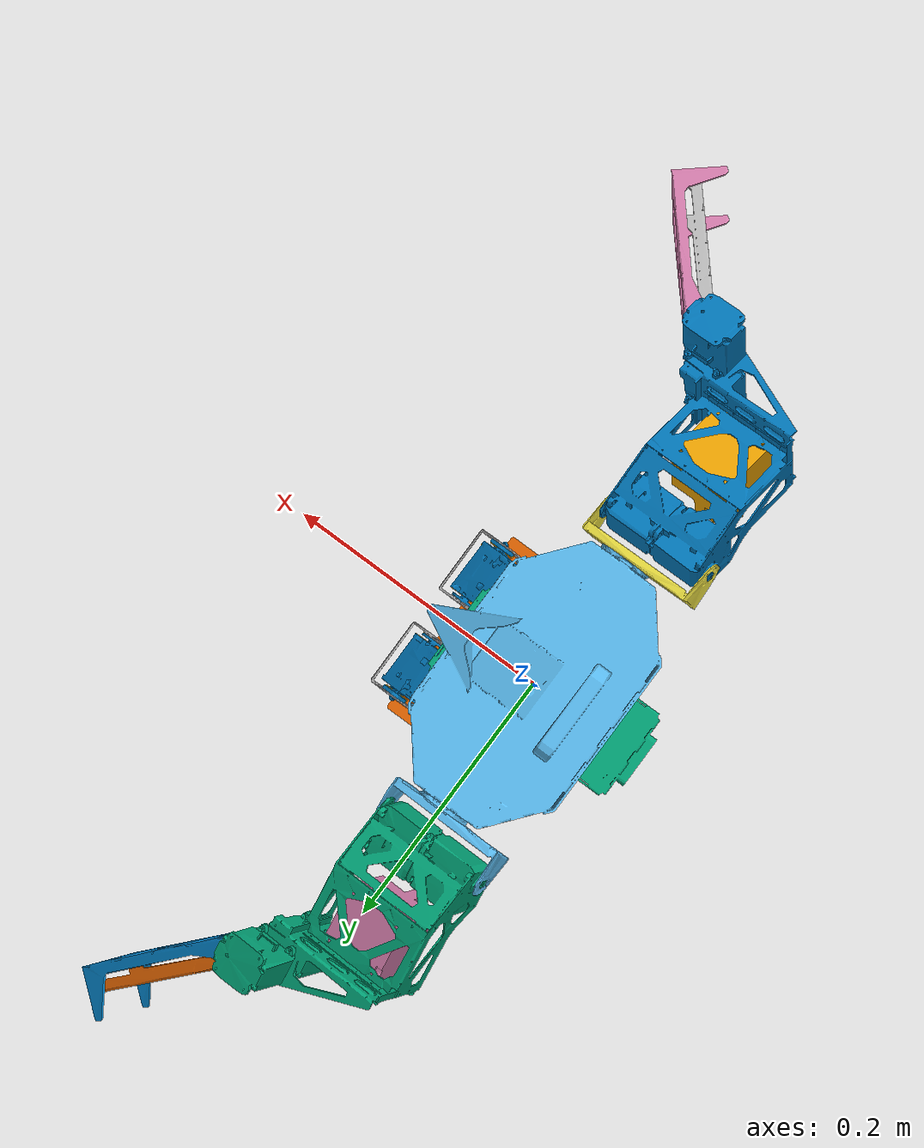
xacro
<?xml version="1.0"?>
<robot name="ginko" xmlns:xacro="http://www.ros.org/wiki/xacro">
  <xacro:arg name="model_mode" default="rviz"/>
  <xacro:arg name="gazebo_motor_model" default="dc"/>
  <xacro:arg name="gazebo_hw_interface" default="position"/>

  <xacro:include filename="$(find ginko_description)/gazebo/xacro/sensors/imu.xacro"/>
  <xacro:include filename="$(find ginko_description)/gazebo/xacro/sensors/urg.xacro"/>
  <xacro:include filename="$(find ginko_description)/gazebo/xacro/modules/body.xacro"/>
  <xacro:include filename="$(find ginko_description)/gazebo/transmission/body.gazebo"/>
  <xacro:include filename="$(find ginko_description)/gazebo/xacro/modules/arm_l.xacro"/>
  <xacro:include filename="$(find ginko_description)/gazebo/transmission/arm_l.gazebo"/>
  <xacro:include filename="$(find ginko_description)/gazebo/xacro/modules/arm_r.xacro"/>
  <xacro:include filename="$(find ginko_description)/gazebo/transmission/arm_r.gazebo"/>
  <xacro:include filename="$(find ginko_description)/gazebo/xacro/modules/leg_l.xacro"/>
  <xacro:include filename="$(find ginko_description)/gazebo/transmission/leg_l.gazebo"/>
  <xacro:include filename="$(find ginko_description)/gazebo/xacro/modules/leg_r.xacro"/>
  <xacro:include filename="$(find ginko_description)/gazebo/transmission/leg_r.gazebo"/>

  <!-- MACRO:Loading Gazebo Controllers for joints -->
  <xacro:macro name="gazebo_plugin_xacro" params="gazebo_motor_model">
    <xacro:if value="${gazebo_motor_model=='ginko'}">
      <gazebo>
        <plugin name="gazebo_ros_control" filename="libgazebo_ros_control.so">
          <robotNamespace>/ginko</robotNamespace>
          <robotSimType>gazebo_ros_control/GinkoRobotHWSim</robotSimType>
          <legacyModeNS>true</legacyModeNS>
        </plugin>
      </gazebo>
    </xacro:if>
    <xacro:if value="${gazebo_motor_model=='default'}">
      <gazebo>
        <plugin name="gazebo_ros_control" filename="libgazebo_ros_control.so">
          <robotNamespace>/ginko</robotNamespace>
          <robotSimType>gazebo_ros_control/DefaultRobotHWSim</robotSimType>
          <legacyModeNS>true</legacyModeNS>
        </plugin>
      </gazebo>
    </xacro:if>
    <xacro:if value="${gazebo_motor_model=='dc'}">
      <gazebo>
        <plugin name="gazebo_ros_control" filename="libgazebo_dc_motor.so">
          <robotNamespace>ginko</robotNamespace>
          <robotSimType>gazebo_dc_motor/DefaultRobotHWSim</robotSimType>
          <legacyModeNS>false</legacyModeNS>
        </plugin>
      </gazebo>
    </xacro:if>
  </xacro:macro>

  <!-- MACRO:Setting up a Robot Model -->
  <xacro:macro name="ginko_xacro" params="model_mode gazebo_hw_interface">
    <link name="root_link"/>
    <joint name="root_joint" type="fixed">
        <parent link="root_link"/>
        <child  link="body_link0"/>
        <origin xyz="0 0 0" rpy="0 0 0"/>
    </joint>
    <xacro:body_xacro model_mode="${model_mode}"/>
    <xacro:body_gazebo gazebo_hw_interface="${gazebo_hw_interface}"/>
    <xacro:leg_r model_mode="${model_mode}"/>
    <xacro:leg_r_gazebo gazebo_hw_interface="${gazebo_hw_interface}"/>
    <xacro:leg_l model_mode="${model_mode}"/>
    <xacro:leg_l_gazebo gazebo_hw_interface="${gazebo_hw_interface}"/>
    <xacro:arm_r model_mode="${model_mode}"/>
    <xacro:arm_r_gazebo gazebo_hw_interface="${gazebo_hw_interface}"/>
    <xacro:arm_l model_mode="${model_mode}"/>
    <xacro:arm_l_gazebo gazebo_hw_interface="${gazebo_hw_interface}"/>
  </xacro:macro>

  <!-- Load Macros -->
  <xacro:ginko_xacro model_mode="$(arg model_mode)" gazebo_hw_interface="$(arg gazebo_hw_interface)"/>
  <xacro:gazebo_plugin_xacro gazebo_motor_model="$(arg gazebo_motor_model)"/>
  <xacro:imu_xacro model_mode="$(arg model_mode)"/>
  <xacro:urg_xacro firame_id="arm_r_urg_link" topic_name="/sensor/urg/right/scan_raw" sensor_name="urg_right"/>
  <xacro:urg_xacro firame_id="arm_l_urg_link" topic_name="/sensor/urg/left/scan_raw" sensor_name="urg_left"/>

</robot>

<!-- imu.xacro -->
<robot xmlns:xacro="http://www.ros.org/wiki/xacro">
	<xacro:macro name="imu_xacro" params="model_mode">
		<xacro:if value="${model_mode!='rviz'}">
			<link name="body_imu_attached_link">
				<inertial>
					<mass value="0.0005"/>
					<origin xyz="0 0 0" rpy="0 0 0"/>
					<inertia
						ixx="0.00000001"
						ixy="0.00000000" iyy="0.00000001"
						ixz="0.00000000" iyz="0.00000000" izz="0.00000001"/>
				</inertial>
			</link>
			<joint name="body_imu_attached_joint" type="revolute">
				<parent link="body_link1"/>
				<child  link="body_imu_attached_link"/>
				<origin xyz="-0.09 0 -0.0379" rpy="0 1.5708 0"/>
				<axis xyz="0 0 1"/>
				<limit effort="0.0" lower="0.0" upper="0.0" velocity="0.0"/>
				<dynamics damping="0.1" friction="0.1"/>
			</joint>

			<link name="body_imu_base_link">
				<inertial>
					<mass value="0.0005"/>
					<origin xyz="0 0 0" rpy="0 0 0"/>
					<inertia
						ixx="0.00000001"
						ixy="0.00000000" iyy="0.00000001"
						ixz="0.00000000" iyz="0.00000000" izz="0.00000001"/>
				</inertial>
			</link>
			<joint name="imu_joint" type="revolute">
				<parent link="body_link1"/>
				<child  link="body_imu_base_link"/>
			<origin xyz="-0.09 0 -0.0379" rpy="0 0 0"/>
				<axis xyz="0 0 1"/>
				<limit effort="0.0" lower="0.0" upper="0.0" velocity="0.0"/>
				<dynamics damping="0.1" friction="0.1"/>
			</joint>
		</xacro:if>

		<xacro:if value="${model_mode=='rviz'}">
			<link name="body_imu_attached_link"/>
			<joint name="body_imu_attached_joint" type="fixed">
				<parent link="body_link1"/>
				<child  link="body_imu_attached_link"/>
				<origin xyz="-0.09 0 -0.0379" rpy="0 1.5708 0"/>
			</joint>

			<link name="body_imu_base_link"/>
			<joint name="imu_joint" type="fixed">
				<parent link="body_link1"/>
				<child  link="body_imu_base_link"/>
				<origin xyz="-0.09 0 -0.0379" rpy="0 1.5708 0"/>
			</joint>
		</xacro:if>

		<gazebo>
			<plugin name="imu_plugin" filename="libgazebo_ros_imu.so">
				<alwaysOn>true</alwaysOn>
				<bodyName>body_imu_base_link</bodyName>
				<topicName>/sensor/imu/raw/data</topicName>
				<serviceName>gazebo_imu_service</serviceName>
				<gaussianNoise>0.0</gaussianNoise>
				<updateRate>400.0</updateRate>
			</plugin>
		</gazebo>
	</xacro:macro>
</robot>

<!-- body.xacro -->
<robot xmlns:xacro="http://www.ros.org/wiki/xacro">
	<xacro:macro name="body_xacro" params="model_mode">
		<!-- chest -->
		<link name="body_link0">
			<collision>
				<origin xyz="0 0 0" rpy="0 0 0"/>
				<geometry>
					<mesh filename="package://ginko_description/meshes/stl/link00_chest.stl"/>
				</geometry>
			</collision>
			<visual>
				<origin xyz="0 0 0" rpy="0 0 0"/>
				<geometry>
					<mesh filename="package://ginko_description/meshes/obj/link00_chest.obj"/>
				</geometry>
			</visual>
			<inertial>
				<mass value="1.41502697"/>
				<origin xyz="0.00008301 0.00000908 0.03819562" rpy="0 0 0"/>
				<inertia
					ixx="0.00248548"
					ixy="-0.00000074" iyy="0.00121388"
					ixz="0.000003761" iyz="-0.00000042" izz="0.00287756"/>
			</inertial>
		</link>
		<!-- Joint1 -->
		<joint name="body_joint1" type="revolute">
			<parent link="body_link0"/>
			<child  link="body_link1"/>
			<origin xyz="0.0 0 0" rpy="0 0 0"/>
			<axis xyz="0 0 1"/>
			<limit effort="1000.0" lower="-2.6" upper="2.6" velocity="10.0"/>
			<dynamics damping="0.1" friction="0.1"/>
		</joint>
		<!-- waist -->
		<link name="body_link1">
			<collision>
				<origin xyz="0 0 0" rpy="0 0 0"/>
	    		<geometry>
					<mesh filename="package://ginko_description/meshes/stl/link01_waist.stl"/>
	    		</geometry>
			</collision>
			<visual>
				<origin xyz="0 0 0" rpy="0 0 0"/>
				<geometry>
					<mesh filename="package://ginko_description/meshes/obj/link01_waist.obj"/>
				</geometry>
			</visual>
			<inertial>
				<mass value="0.33312665"/>
				<origin xyz="-0.01135452 -0.00000134 -0.02720222" rpy="0 0 0"/>
				<inertia
					ixx="0.00015328"
					ixy="0.00000003" iyy="0.00073745"
					ixz="0.00001078" iyz="0.00000000" izz="0.00073107"/>
			</inertial>
		</link>
	</xacro:macro>
</robot>

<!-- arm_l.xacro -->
<robot xmlns:xacro="http://www.ros.org/wiki/xacro">
	<xacro:macro name="arm_l" params="model_mode">
		<!-- shoulder pitch. -->
		<joint name="arm_l_joint0" type="revolute">
		    <parent link="body_link0"/>
			<child link="arm_l_link0"/>
		    <origin xyz="0 0.10683 0.05115" rpy="0 0.3927 0"/>
		    <axis xyz="0 -1 0"/>
			<limit effort="1000.0" lower="-2.6" upper="2.6" velocity="10.0"/>
			<dynamics damping="0.1" friction="0.1"/>
		</joint>
		<link name="arm_l_link0">
			<collision>
				<origin xyz="0 0 0" rpy="0 0 0"/>
				<geometry>
					<mesh filename="package://ginko_description/meshes/stl/link09_l_arm01.stl"/>
				</geometry>
			</collision>
			<visual>
				<origin xyz="0 0 0" rpy="0 0 0"/>
				<geometry>
					<mesh filename="package://ginko_description/meshes/obj/link09_l_arm01.obj"/>
				</geometry>
			</visual>
			<inertial>
				<mass value="0.01356014"/>
				<origin xyz="-0.01125790 0.00529265 0.00000000" rpy="0 0 0"/>
				<inertia
					ixx="0.00000235"
					ixy="0.00000004" iyy="0.00001670"
					ixz="0.00000000" iyz="0.00000000" izz="0.00001606"/>
			</inertial>
		</link>

		<!-- shoulder roll -->
		<joint name="arm_l_joint1" type="revolute">
			<parent link="arm_l_link0"/>
			<child  link="arm_l_link1"/>
			<origin xyz="0.035 0.0246 0" rpy="1.1781 0 0"/>
			<axis xyz="1 0 0"/>
			<limit effort="1000.0" lower="-1.18" upper="1.5" velocity="10.0"/>
			<dynamics damping="0.1" friction="0.1"/>
		</joint>
		<link name="arm_l_link1">
			<collision>
				<origin xyz="0 0 0" rpy="0 0 0"/>
	    		<geometry>
					<mesh filename="package://ginko_description/meshes/stl/link10_l_arm02.stl"/>
	    		</geometry>
			</collision>
			<visual>
				<origin xyz="0 0 0" rpy="0 0 0"/>
				<geometry>
					<mesh filename="package://ginko_description/meshes/obj/link10_l_arm02.obj"/>
				</geometry>
			</visual>
			<inertial>
				<mass value="0.33139947"/>
				<origin xyz="-0.02612786 0.02650564 -0.06333369" rpy="0 0 0"/>
				<inertia
					ixx="0.00115128"
					ixy="0.00015366" iyy="0.00113572"
					ixz="-0.00031848" iyz="-0.00037104" izz="0.00064743"/>
			</inertial>
		</link>
		<joint name="arm_l_joint1_rev" type="revolute">
			<parent link="arm_l_link0"/>
			<child  link="dummy0_arm_l_link1"/>
			<origin xyz="-0.0562 0.0246 0" rpy="1.1781 0 0"/>
			<axis xyz="-1 0 0"/>
			<limit effort="1000.0" lower="-1.5" upper="1.18" velocity="10.0"/>
			<dynamics damping="0.0" friction="0.0"/>
		</joint>
		<link name="dummy0_arm_l_link1">
			<inertial>
				<mass value="0.00001"/>
				<origin xyz="-0.0912 0 0" rpy="0 0 0"/>
				<inertia
					ixx="0.00000001"
					ixy="0.00000000" iyy="0.00000001"
					ixz="0.00000000" iyz="0.00000000" izz="0.00000001"/>
			</inertial>
		</link>

		<!-- scissors -->
		<joint name="arm_l_joint2" type="revolute">
	    	<parent link="arm_l_link1"/>
	    	<child  link="arm_l_link2"/>
	    	<origin xyz="0.0092 0.0547 -0.11295" rpy="0 0.7854 0"/>
	    	<axis xyz="0 1 0"/>
	    	<limit effort="1000.0" lower="-2.36" upper="2.36" velocity="10.0"/>
			<dynamics damping="0.1" friction="0.1"/>
		</joint>
		<link name="arm_l_link2">
	    	<collision>
				<origin xyz="0 0 0" rpy="0 0 0"/>
	    		<geometry>
					<mesh filename="package://ginko_description/meshes/stl/link11_l_scissor01.stl"/>
	    		</geometry>
			</collision>
			<visual>
				<origin xyz="0 0 0" rpy="0 0 0"/>
				<geometry>
					<mesh filename="package://ginko_description/meshes/obj/link11_l_scissor01.obj"/>
				</geometry>
			</visual>
			<inertial>
				<mass value="0.03287850"/>
				<origin xyz="0.08234859 -0.030246866 0.00514112" rpy="0 0 0"/>
				<inertia
					ixx="0.00002277"
					ixy="-0.00000014" iyy="0.00008197"
					ixz="-0.00000058" iyz="-0.00000001" izz="0.00010105"/>
			</inertial>
		</link>
		<joint name="arm_l_joint3" type="revolute">
	    	<parent link="arm_l_link1"/>
	    	<child  link="arm_l_link3"/>
	    	<origin xyz="0.0092 -0.0018 -0.11295" rpy="0 0.7854 0"/>
	    	<axis xyz="0 1 0"/>
	    	<limit effort="1000.0" lower="-2.36" upper="2.36" velocity="10.0"/>
			<dynamics damping="0.1" friction="0.1"/>
		</joint>
		<link name="arm_l_link3">
	    	<collision>
				<origin xyz="0 0 0" rpy="0 0 0"/>
	    		<geometry>
					<mesh filename="package://ginko_description/meshes/stl/link12_l_scissor02.stl"/>
	    		</geometry>
			</collision>
			<visual>
				<origin xyz="0 0 0" rpy="0 0 0"/>
				<geometry>
					<mesh filename="package://ginko_description/meshes/obj/link12_l_scissor02.obj"/>
				</geometry>
			</visual>
			<inertial>
				<mass value="0.02936110"/>
				<origin xyz="0.07807033 0.02515230 -0.00665437" rpy="0 0 0"/>
				<inertia
					ixx="0.00001452"
					ixy="0.00000023" iyy="0.00006407"
					ixz="-0.00000245" iyz="-0.00000002" izz="0.00008024"/>
			</inertial>
		</link>

	  	<!-- LiDAR -->
		<!-- use zero-limited revolute joint for fixed joint (SDF) -->
		<xacro:if value="${model_mode!='rviz'}">
			<joint name="arm_l_urg_joint" type="revolute">
				<parent link="arm_l_link1"/>
				<child  link="arm_l_urg_link"/>
				<origin xyz="-0.0456 -0.01715 -0.06795" rpy="0 1.57 -1.57"/>
				<axis xyz="0 0 1"/>
				<limit effort="0.0" lower="0.0" upper="0.0" velocity="0.0"/>
				<dynamics damping="0.1" friction="0.1"/>
			</joint>
		</xacro:if>
		<xacro:if value="${model_mode=='rviz'}">
			<joint name="arm_l_urg_joint" type="fixed">
				<parent link="arm_l_link1"/>
				<child  link="arm_l_urg_link"/>
				<origin xyz="-0.0456 -0.01715 -0.06795" rpy="0 1.57 -1.57"/>
			</joint>
		</xacro:if>

		<link name="arm_l_urg_link">
	    	<collision>
				<origin xyz="0 0 0" rpy="0 0 0"/>
	    		<geometry>
					<mesh filename="package://ginko_description/meshes/stl/urg.stl"/>
	    		</geometry>
			</collision>
			<visual>
				<origin xyz="0 0 0" rpy="0 0 0"/>
				<geometry>
					<mesh filename="package://ginko_description/meshes/obj/urg.obj"/>
				</geometry>
			</visual>
			<inertial>
				<mass value="0.16705492"/>
				<origin xyz="-0.00014579 0.00000831 -0.02360505" rpy="0 0 0"/>
				<inertia
					ixx="0.00008801"
					ixy="0.00000000" iyy="0.00008854"
					ixz="-0.00000049" iyz="-0.00000004" izz="0.00006019"/>
			</inertial>
		</link>
	</xacro:macro>
</robot>

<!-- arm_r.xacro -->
<robot xmlns:xacro="http://www.ros.org/wiki/xacro">
	<xacro:macro name="arm_r" params="model_mode">
		<!-- shoulder pitch. -->
		<joint name="arm_r_joint0" type="revolute">
		    <parent link="body_link0"/>
			<child link="arm_r_link0"/>
		    <origin xyz="0 -0.10683 0.05115" rpy="0 0.3927 0"/>
		    <axis xyz="0 1 0"/>
			<limit effort="1000.0" lower="-2.6" upper="2.6" velocity="10.0"/>
			<dynamics damping="0.1" friction="0.1"/>
		</joint>
		<link name="arm_r_link0">
			<collision>
				<origin xyz="0 0 0" rpy="0 0 0"/>
				<geometry>
					<mesh filename="package://ginko_description/meshes/stl/link09_r_arm01.stl"/>
				</geometry>
			</collision>
			<visual>
				<origin xyz="0 0 0" rpy="0 0 0"/>
				<geometry>
					<mesh filename="package://ginko_description/meshes/obj/link09_r_arm01.obj"/>
				</geometry>
			</visual>
			<inertial>
				<mass value="0.01356014"/>
				<origin xyz="-0.01125790 -0.00529265 0.00000000" rpy="0 0 0"/>
				<inertia
					ixx="0.00000235"
					ixy="-0.00000004" iyy="0.00001670"
					ixz="0.00000000" iyz="0.00000000" izz="0.00001606"/>
			</inertial>
		</link>

		<!-- shoulder roll -->
		<joint name="arm_r_joint1" type="revolute">
			<parent link="arm_r_link0"/>
			<child  link="arm_r_link1"/>
			<origin xyz="0.035 -0.0246 0" rpy="-1.1781 0 0"/>
			<axis xyz="1 0 0"/>
			<limit effort="1000.0" lower="-1.6" upper="1.18" velocity="10.0"/>
			<dynamics damping="0.1" friction="0.1"/>
		</joint>
		<link name="arm_r_link1">
			<collision>
				<origin xyz="0 0 0" rpy="0 0 0"/>
	    		<geometry>
					<mesh filename="package://ginko_description/meshes/stl/link10_r_arm02.stl"/>
	    		</geometry>
			</collision>
			<visual>
				<origin xyz="0 0 0" rpy="0 0 0"/>
				<geometry>
					<mesh filename="package://ginko_description/meshes/obj/link10_r_arm02.obj"/>
				</geometry>
			</visual>
			<inertial>
				<mass value="0.33139947"/>
				<origin xyz="-0.02612786 -0.02650564 -0.06333369" rpy="0 0 0"/>
				<inertia
					ixx="0.00115128"
					ixy="-0.00015366" iyy="0.00113572"
					ixz="-0.00031848" iyz="0.00037104" izz="0.00064743"/>
			</inertial>
		</link>
		<joint name="arm_r_joint1_rev" type="revolute">
			<parent link="arm_r_link0"/>
			<child  link="dummy0_arm_r_link1"/>
			<origin xyz="-0.0562 -0.0246 0" rpy="-1.1781 0 0"/>
			<axis xyz="-1 0 0"/>
			<limit effort="1000.0" lower="-1.18" upper="1.6" velocity="10.0"/>
			<dynamics damping="0.0" friction="0.0"/>
		</joint>
		<link name="dummy0_arm_r_link1">
			<inertial>
				<mass value="0.00001"/>
				<origin xyz="-0.0912 0 0" rpy="0 0 0"/>
				<inertia
					ixx="0.00000001"
					ixy="0.00000000" iyy="0.00000001"
					ixz="0.00000000" iyz="0.00000000" izz="0.00000001"/>
			</inertial>
		</link>

		<!-- scissors -->
		<joint name="arm_r_joint2" type="revolute">
			<parent link="arm_r_link1"/>
			<child  link="arm_r_link2"/>
			<origin xyz="0.0092 -0.0547 -0.11295" rpy="0 0.7854 0"/>
			<axis xyz="0 -1 0"/>
			<limit effort="1000.0" lower="-2.36" upper="2.36" velocity="10.0"/>
			<dynamics damping="0.1" friction="0.1"/>
		</joint>
		<link name="arm_r_link2">
	    	<collision>
				<origin xyz="0 0 0" rpy="0 0 0"/>
	    		<geometry>
					<mesh filename="package://ginko_description/meshes/stl/link11_r_scissor01.stl"/>
	    		</geometry>
			</collision>
			<visual>
				<origin xyz="0 0 0" rpy="0 0 0"/>
				<geometry>
					<mesh filename="package://ginko_description/meshes/obj/link11_r_scissor01.obj"/>
				</geometry>
			</visual>
			<inertial>
				<mass value="0.03287850"/>
				<origin xyz="0.08234859 0.030246866 0.00514112" rpy="0 0 0"/>
				<inertia
					ixx="0.00002277"
					ixy="0.00000014" iyy="0.00008197"
					ixz="-0.00000058" iyz="0.00000001" izz="0.00010105"/>
			</inertial>
		</link>
		<joint name="arm_r_joint3" type="revolute">
			<parent link="arm_r_link1"/>
			<child  link="arm_r_link3"/>
			<origin xyz="0.0092 0.0018 -0.11295" rpy="0 0.7854 0"/>
			<axis xyz="0 -1 0"/>
			<limit effort="1000.0" lower="-2.36" upper="2.36" velocity="10.0"/>
			<dynamics damping="0.1" friction="0.1"/>
		</joint>
		<link name="arm_r_link3">
	    	<collision>
				<origin xyz="0 0 0" rpy="0 0 0"/>
	    		<geometry>
					<mesh filename="package://ginko_description/meshes/stl/link12_r_scissor02.stl"/>
	    		</geometry>
			</collision>
			<visual>
				<origin xyz="0 0 0" rpy="0 0 0"/>
				<geometry>
					<mesh filename="package://ginko_description/meshes/obj/link12_r_scissor02.obj"/>
				</geometry>
			</visual>
			<inertial>
				<mass value="0.02936110"/>
				<origin xyz="0.07807033 -0.02515230 -0.00665437" rpy="0 0 0"/>
				<inertia
					ixx="0.00001452"
					ixy="-0.00000023" iyy="0.00006407"
					ixz="-0.00000245" iyz="0.00000002" izz="0.00008024"/>
			</inertial>
		</link>

	  	<!-- LiDAR -->
		<!-- use zero-limited revolute joint for fixed joint (SDF) -->
		<xacro:if value="${model_mode!='rviz'}">
			<joint name="arm_r_urg_joint"  type="revolute">
				<parent link="arm_r_link1"/>
				<child  link="arm_r_urg_link"/>
				<origin xyz="-0.0456 0.01715 -0.06795" rpy="0 1.57 1.57"/>
				<axis xyz="0 0 1"/>
				<limit effort="0.0" lower="0.0" upper="0.0" velocity="0.0"/>
				<dynamics damping="0.1" friction="0.1"/>
			</joint>
		</xacro:if>
		<xacro:if value="${model_mode=='rviz'}">
			<joint name="arm_r_urg_joint" type="fixed">
				<parent link="arm_r_link1"/>
				<child  link="arm_r_urg_link"/>
				<origin xyz="-0.0456 0.01715 -0.06795" rpy="0 1.57 1.57"/>
			</joint>
		</xacro:if>

		<link name="arm_r_urg_link">
	    	<collision>
				<origin xyz="0 0 0" rpy="0 0 0"/>
	    		<geometry>
					<mesh filename="package://ginko_description/meshes/stl/urg.stl"/>
	    		</geometry>
			</collision>
			<visual>
				<origin xyz="0 0 0" rpy="0 0 0"/>
				<geometry>
					<mesh filename="package://ginko_description/meshes/obj/urg.obj"/>
				</geometry>
			</visual>
			<inertial>
				<mass value="0.16705492"/>
				<origin xyz="-0.00014579 0.00000831 -0.02360505" rpy="0 0 0"/>
				<inertia
					ixx="0.00008801"
					ixy="0.00000000" iyy="0.00008854"
					ixz="-0.00000049" iyz="-0.00000004" izz="0.00006019"/>
			</inertial>
		</link>
	</xacro:macro>
</robot>

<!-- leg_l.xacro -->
<robot xmlns:xacro="http://www.ros.org/wiki/xacro">
	<xacro:macro name="leg_l" params="model_mode">
		<!-- Link conencts from body. Femoral first. -->
		<joint name="leg_l_joint0" type="revolute">
		    <parent link="body_link1"/>
			<child link="leg_l_link0"/>
			<origin xyz="-0.0404 0.0 -0.0409" rpy="0 0 0"/>
		    <axis xyz="-1 0 0"/>
			<limit effort="1000.0" lower="-0.8" upper="1.0" velocity="10.0"/>
			<dynamics damping="0.0" friction="0.3"/>
		</joint>
		<link name="leg_l_link0">
			<collision>
				<origin xyz="0 0 0" rpy="0 0 0"/>
				<geometry>
					<mesh filename="package://ginko_description/meshes/stl/link02_l_femoral.stl"/>
				</geometry>
			</collision>
			<visual>
				<origin xyz="0 0 0" rpy="0 0 0"/>
				<geometry>
					<mesh filename="package://ginko_description/meshes/obj/link02_l_femoral.obj"/>
				</geometry>
			</visual>
			<inertial>
				<mass value="0.03433352"/>
				<origin xyz="0.02930795 0.03723759 -0.02605386" rpy="0 0 0"/>
				<inertia
					ixx="0.00002443"
					ixy="-0.00000021" iyy="0.00002287"
					ixz="-0.00000021" iyz="-0.00000391" izz="0.00002983"/>
			</inertial>
		</link>

		<!-- parallel link (upper-1st) -->
		<joint name="leg_l_joint1" type="revolute">
			<parent link="leg_l_link0"/>
			<child  link="leg_l_link1"/>
			<origin xyz="0.0433 0.0175 -0.0481" rpy="0 0.7854 0"/>
			<axis xyz="0 -1 0"/>
			<limit effort="1000.0" lower="-1.3" upper="0.7854" velocity="10.0"/>
			<dynamics damping="0.0" friction="0.3"/>
		</joint>
		<link name="leg_l_link1">
			<collision>
				<origin xyz="0 0 0" rpy="0 0 0"/>
	    		<geometry>
					<mesh filename="package://ginko_description/meshes/stl/link03_l_leg01.stl"/>
	    		</geometry>
			</collision>
			<visual>
				<origin xyz="0 0 0" rpy="0 0 0"/>
				<geometry>
					<mesh filename="package://ginko_description/meshes/obj/link03_l_leg01.obj"/>
				</geometry>
			</visual>
			<inertial>
				<mass value="0.15115113"/>
				<origin xyz="0.05000000 0.02587267 0.00000000" rpy="0 0 0"/>
				<inertia
					ixx="0.00003721"
					ixy="0.00000000" iyy="0.00026035"
					ixz="0.00000000" iyz="0.00000000" izz="0.00028077"/>
			</inertial>
		</link>
		<joint name="leg_l_joint3" type="revolute">
	    	<parent link="leg_l_link1"/>
	    	<child  link="leg_l_link3"/>
	    	<origin xyz="0.1 0.0 0.0" rpy="0 -0.7854 0"/>
	    	<axis xyz="0 1 0"/>
			<limit effort="1000.0" lower="-1.3" upper="0.7854" velocity="10.0"/>
			<dynamics damping="0.0" friction="0.3"/>
			<xacro:if value="${model_mode=='rviz'}">
				<mimic joint="leg_l_joint1" multiplier="1" offset="0"/>
			</xacro:if>
	  	</joint>

		<!-- parallel link (upper-2nd) -->
		<joint name="leg_l_joint2" type="revolute">
			<parent link="leg_l_link0"/>
			<child  link="leg_l_link2"/>
			<origin xyz="0.022 0.0175 -0.06015" rpy="0 0.7854 0"/>
			<axis xyz="0 -1 0"/>
			<limit effort="1000.0" lower="-1.3" upper="0.7854" velocity="10.0"/>
			<dynamics damping="0.0" friction="0.3"/>
			<xacro:if value="${model_mode=='rviz'}">
				<mimic joint="leg_l_joint1" multiplier="1" offset="0"/>
    		</xacro:if>
		</joint>
		<link name="leg_l_link2">
	    	<collision>
				<origin xyz="0 0 0" rpy="0 0 0"/>
	    		<geometry>
					<mesh filename="package://ginko_description/meshes/stl/link04_l_leg02.stl"/>
	    		</geometry>
			</collision>
			<visual>
				<origin xyz="0 0 0" rpy="0 0 0"/>
				<geometry>
					<mesh filename="package://ginko_description/meshes/obj/link04_l_leg02.obj"/>
				</geometry>
			</visual>
			<inertial>
				<mass value="0.01646643"/>
				<origin xyz="0.05000000 0.02495100 -0.00491150" rpy="0 0 0"/>
				<inertia
					ixx="0.00000640"
					ixy="0.00000000" iyy="0.00001642"
					ixz="0.00000000" iyz="0.00000000" izz="0.00002264"/>
			</inertial>
		</link>
		<joint name="close_leg_l_joint0" type="revolute">
			<parent link="leg_l_link2"/>
			<child  link="dummy0_leg_l_link3"/>
			<origin xyz="0.1 0.0 0.0" rpy="0 -0.7854 0"/>
			<axis xyz="0 1 0"/>
			<limit effort="1000.0" lower="-1.3" upper="0.7854" velocity="10.0"/>
			<dynamics damping="0.0" friction="0.0"/>
			<xacro:if value="${model_mode=='rviz'}">
				<mimic joint="leg_l_joint1" multiplier="1" offset="0"/>
			</xacro:if>
		</joint>
		<link name="dummy0_leg_l_link3">
			<inertial>
				<mass value="0.00001"/>
				<origin xyz="-0.021 0 -0.012" rpy="0 0 0"/>
				<inertia
					ixx="0.00000001"
					ixy="0.00000000" iyy="0.00000001"
					ixz="0.00000000" iyz="0.00000000" izz="0.00000001"/>
			</inertial>
		</link>

		<!-- knee -->
		<link name="leg_l_link3">
	    	<collision>
				<origin xyz="0 0 0" rpy="0 0 0"/>
	    		<geometry>
					<mesh filename="package://ginko_description/meshes/stl/link05_l_knee.stl"/>
	    		</geometry>
			</collision>
			<visual>
				<origin xyz="0 0 0" rpy="0 0 0"/>
				<geometry>
					<mesh filename="package://ginko_description/meshes/obj/link05_l_knee.obj"/>
				</geometry>
			</visual>
			<inertial>
				<mass value="0.01781176"/>
				<origin xyz="0.00393357 0.02364163 -0.01930000" rpy="0 0 0"/>
				<inertia
					ixx="0.00001301"
					ixy="0.00000008" iyy="0.00000700"
					ixz="0.00000000" iyz="0.00000000" izz="0.00001388"/>
			</inertial>
		</link>

	  	<!-- spring -->
		<xacro:if value="${model_mode!='rviz'}">
			<joint name="leg_l_spring0_joint0" type="revolute">
		    	<parent link="leg_l_link0"/>
		    	<child  link="leg_l_spring0_link0"/>
		    	<origin xyz="0.022 0.0755 -0.06015" rpy="0 0.56756754 0"/>
		    	<axis xyz="0 -1 0"/>
				<dynamics damping="0.0" friction="0.0"/>
		    	<limit effort="0.0" lower="-3.141593" upper="3.141593" velocity="10.0"/>
		  	</joint>
		  	<link name="leg_l_spring0_link0">
		    	<collision>
					<origin xyz="0 0 0" rpy="0 0 0"/>
		    		<geometry>
						<mesh filename="package://ginko_description/meshes/stl/spring1.stl"/>
		    		</geometry>
				</collision>
		    	<visual>
					<origin xyz="0 0 0" rpy="0 0 0"/>
		    		<geometry>
						<mesh filename="package://ginko_description/meshes/stl/spring1.stl"/>
		    		</geometry>
					<material name="spring">
						<color rgba="0.5 0.5 0.5 1.0"/>
					</material>
				</visual>
				<inertial>
					<mass value="0.0143865"/>
					<origin xyz="0.03091683 0.0 0.0" rpy="0 0 0"/>
					<inertia
						ixx="0.0000001"
						ixy="0.00000000" iyy="0.0000060"
						ixz="0.00000000" iyz="0.00000000" izz="0.0000060"/>
				</inertial>
			</link>
			<joint name="spring0_leg_l_joint" type="prismatic">
				<parent link="leg_l_spring0_link0"/>
				<child  link="leg_l_spring0_link1"/>
				<origin xyz="0.10911938 0.0 0.0" rpy="0 3.141593 0"/>
				<axis xyz="1 0 0"/>
				<limit effort="1000.0" lower="-0.03" upper="0.06" velocity="10.0"/>
				<dynamics damping="0.0" friction="0.0"/>
			</joint>
		  	<link name="leg_l_spring0_link1">
		    	<collision>
					<origin xyz="0 0 0" rpy="0 0 0"/>
		    		<geometry>
						<mesh filename="package://ginko_description/meshes/stl/spring2.stl"/>
		    		</geometry>
				</collision>
		    	<visual>
					<origin xyz="0 0 0" rpy="0 0 0"/>
		    		<geometry>
						<mesh filename="package://ginko_description/meshes/stl/spring2.stl"/>
		    		</geometry>
					<material name="spring">
						<color rgba="0.5 0.5 0.5 1.0"/>
					</material>
				</visual>
				<inertial>
					<mass value="0.0143865"/>
					<origin xyz="0.03091683 0.0 0.0" rpy="0 0 0"/>
					<inertia
						ixx="0.0000001"
						ixy="0.00000000" iyy="0.0000060"
						ixz="0.00000000" iyz="0.00000000" izz="0.0000060"/>
				</inertial>
			</link>
			<joint name="close_leg_l_spring0_joint1" type="revolute">
				<parent link="leg_l_spring0_link1"/>
				<child  link="dummy1_leg_l_link3"/>
				<origin xyz="0 0 0" rpy="0 0 0"/>
				<axis xyz="0 -1 0"/>
				<limit effort="0.0" lower="-3.141593" upper="3.141593" velocity="10.0"/>
				<dynamics damping="0.0" friction="0.0"/>
			</joint>
			<link name="dummy1_leg_l_link3">
				<inertial>
					<mass value="0.00001"/>
					<origin xyz="0 0.058 0" rpy="0 0 0"/>
					<inertia
						ixx="0.00000001"
						ixy="0.00000000" iyy="0.00000001"
						ixz="0.00000000" iyz="0.00000000" izz="0.00000001"/>
				</inertial>
			</link>
		</xacro:if>

		<!-- parallel link (lower-1st) -->
		<joint name="leg_l_joint4" type="revolute">
			<parent link="leg_l_link3"/>
			<child  link="leg_l_link4"/>
			<origin xyz="0 0 -0.0386" rpy="0 2.3562 0"/>
			<axis xyz="0 -1 0"/>
			<limit effort="1000.0" lower="-0.7854" upper="1.3" velocity="10.0"/>
			<dynamics damping="0.0" friction="0.3"/>
		</joint>
		<link name="leg_l_link4">
			<collision>
				<origin xyz="0 0 0" rpy="0 0 0"/>
	    		<geometry>
					<mesh filename="package://ginko_description/meshes/stl/link03_l_leg01.stl"/>
	    		</geometry>
			</collision>
			<visual>
				<origin xyz="0 0 0" rpy="0 0 0"/>
				<geometry>
					<mesh filename="package://ginko_description/meshes/obj/link03_l_leg01.obj"/>
				</geometry>
			</visual>
			<inertial>
				<mass value="0.15115113"/>
				<origin xyz="0.05000000 0.02587267 0.00000000" rpy="0 0 0"/>
				<inertia
					ixx="0.00003721"
					ixy="0.00000000" iyy="0.00026035"
					ixz="0.00000000" iyz="0.00000000" izz="0.00028077"/>
			</inertial>
		</link>
		<joint name="leg_l_joint6" type="revolute">
	    	<parent link="leg_l_link4"/>
	    	<child  link="leg_l_link6"/>
	    	<origin xyz="0.1 0.0 0.0" rpy="0 -2.3562 0"/>
	    	<axis xyz="0 1 0"/>
			<limit effort="1000.0" lower="-0.7854" upper="1.3" velocity="10.0"/>
			<dynamics damping="0.0" friction="0.3"/>
			<xacro:if value="${model_mode=='rviz'}">
	    		<mimic joint="leg_l_joint4" multiplier="1" offset="0"/>
			</xacro:if>
		</joint>

		<!-- parallel link (lower-2nd) -->
		<joint name="leg_l_joint5" type="revolute">
			<parent link="leg_l_link3"/>
			<child  link="leg_l_link5"/>
			<origin xyz="-0.0213 0 -0.02655" rpy="0 2.3562 0"/>
			<axis xyz="0 -1 0"/>
			<limit effort="0.0" lower="-0.7854" upper="1.3" velocity="10.0"/>
			<dynamics damping="0.0" friction="0.0"/>
			<xacro:if value="${model_mode=='rviz'}">
				<mimic joint="leg_l_joint4" multiplier="1" offset="0"/>
			</xacro:if>
		</joint>
		<link name="leg_l_link5">
	    	<collision>
				<origin xyz="0 0 0" rpy="0 0 0"/>
	    		<geometry>
					<mesh filename="package://ginko_description/meshes/stl/link04_l_leg02.stl"/>
	    		</geometry>
			</collision>
			<visual>
				<origin xyz="0 0 0" rpy="0 0 0"/>
				<geometry>
					<mesh filename="package://ginko_description/meshes/obj/link04_l_leg02.obj"/>
				</geometry>
			</visual>
			<inertial>
				<mass value="0.01646643"/>
				<origin xyz="0.05000000 0.02495100 -0.00491150" rpy="0 0 0"/>
				<inertia
					ixx="0.00000640"
					ixy="0.00000000" iyy="0.00001642"
					ixz="0.00000000" iyz="0.00000000" izz="0.00002264"/>
			</inertial>
		</link>
		<joint name="close_leg_l_joint1" type="revolute">
			<parent link="leg_l_link5"/>
			<child  link="dummy2_leg_l_link6"/>
			<origin xyz="0.1 0.0 0.0" rpy="0 -2.3562 0"/>
			<axis xyz="0 1 0"/>
			<limit effort="0.0" lower="-1.3" upper="0.7854" velocity="10.0"/>
			<dynamics damping="0.0" friction="0.0"/>
			<xacro:if value="${model_mode=='rviz'}">
				<mimic joint="leg_l_joint4" multiplier="1" offset="0"/>
			</xacro:if>
		</joint>
		<link name="dummy2_leg_l_link6">
			<inertial>
				<mass value="0.00001"/>
				<origin xyz="-0.021 0 0.012" rpy="0 0 0"/>
				<inertia
					ixx="0.00000001"
					ixy="0.00000000" iyy="0.00000001"
					ixz="0.00000000" iyz="0.00000000" izz="0.00000001"/>
			</inertial>
		</link>

	  	<!-- spring -->
		<xacro:if value="${model_mode!='rviz'}">
			<joint name="leg_l_spring1_joint0" type="continuous">
				<parent link="leg_l_link4"/>
				<child  link="leg_l_spring1_link0"/>
				<origin xyz="0 0.058 0" rpy="0 0.217830624 0"/>
				<axis xyz="0 -1 0"/>
				<limit effort="0.0" lower="-3.141593" upper="3.141593" velocity="10.0"/>
				<dynamics damping="0.01" friction="0.0"/>
			</joint>
			<link name="leg_l_spring1_link0">
				<collision>
					<origin xyz="0 0 0" rpy="0 0 0"/>
					<geometry>
						<mesh filename="package://ginko_description/meshes/stl/spring1.stl"/>
					</geometry>
				</collision>
				<visual>
					<origin xyz="0 0 0" rpy="0 0 0"/>
					<geometry>
						<mesh filename="package://ginko_description/meshes/stl/spring1.stl"/>
					</geometry>
					<material name="spring">
						<color rgba="0.5 0.5 0.5 1.0"/>
					</material>
				</visual>
				<inertial>
					<mass value="0.0143865"/>
					<origin xyz="0.03091683 0.0 0.0" rpy="0 0 0"/>
					<inertia
						ixx="0.0000001"
						ixy="0.00000000" iyy="0.0000060"
						ixz="0.00000000" iyz="0.00000000" izz="0.0000060"/>
				</inertial>
			</link>
			<joint name="spring1_leg_l_joint" type="prismatic">
				<parent link="leg_l_spring1_link0"/>
				<child  link="leg_l_spring1_link1"/>
				<origin xyz="0.10911938 0.0 0.0" rpy="0 3.141593 0"/>
				<axis xyz="1 0 0"/>
				<limit effort="1000.0" lower="-0.03" upper="0.06" velocity="10.0"/>
				<dynamics damping="0.01" friction="0.0"/>
			</joint>
			<link name="leg_l_spring1_link1">
				<collision>
					<origin xyz="0 0 0" rpy="0 0 0"/>
					<geometry>
						<mesh filename="package://ginko_description/meshes/stl/spring2.stl"/>
					</geometry>
				</collision>
				<visual>
					<origin xyz="0 0 0" rpy="0 0 0"/>
					<geometry>
						<mesh filename="package://ginko_description/meshes/stl/spring2.stl"/>
					</geometry>
					<material name="spring">
						<color rgba="0.5 0.5 0.5 1.0"/>
					</material>
				</visual>
				<inertial>
					<mass value="0.0143865"/>
					<origin xyz="0.03091683 0.0 0.0" rpy="0 0 0"/>
					<inertia
						ixx="0.0000001"
						ixy="0.00000000" iyy="0.0000060"
						ixz="0.00000000" iyz="0.00000000" izz="0.0000060"/>
				</inertial>
			</link>
			<joint name="close_leg_l_spring1_joint1" type="continuous">
				<parent link="leg_l_spring1_link1"/>
				<child  link="dummy3_leg_l_link6"/>
				<origin xyz="0 0 0" rpy="0 -2.574025114 0"/>
				<axis xyz="0 -1 0"/>
				<limit effort="0.0" lower="-3.141593" upper="3.141593" velocity="10.0"/>
				<dynamics damping="0.01" friction="0.0"/>
			</joint>
			<link name="dummy3_leg_l_link6">
				<inertial>
					<mass value="0.00001"/>
					<origin xyz="-0.021 0.058 0.012" rpy="0 0 0"/>
					<inertia
						ixx="0.00000001"
						ixy="0.00000000" iyy="0.00000001"
						ixz="0.00000000" iyz="0.00000000" izz="0.00000001"/>
				</inertial>
			</link>
		</xacro:if>

		<!-- toe -->
		<link name="leg_l_link6">
			<collision>
				<origin xyz="0 0 0" rpy="0 0 0"/>
				<geometry>
					<mesh filename="package://ginko_description/meshes/stl/link06_l_toe01.stl"/>
				</geometry>
			</collision>
			<visual>
				<origin xyz="0 0 0" rpy="0 0 0"/>
				<geometry>
					<mesh filename="package://ginko_description/meshes/obj/link06_l_toe01.obj"/>
				</geometry>
			</visual>
			<inertial>
				<mass value="0.08799204"/>
				<origin xyz="-0.04166125 0.02463880 -0.02586249" rpy="0 0 0"/>
				<inertia
					ixx="0.00002815"
					ixy="-0.00000041" iyy="0.00006846"
					ixz="0.00000980" iyz="-0.00000026" izz="0.00006529"/>
			</inertial>
		</link>
		<joint name="leg_l_joint7" type="revolute">
	    	<parent link="leg_l_link6"/>
	    	<child  link="leg_l_link7"/>
	    	<origin xyz="-0.028 0.02475 -0.0391" rpy="0 0 0"/>
	    	<axis xyz="-1 0 0"/>
	    	<limit effort="1000.0" lower="-1.6" upper="1.6" velocity="10.0"/>
			<dynamics damping="0.0" friction="0.3"/>
		</joint>
		<link name="leg_l_link7">
	    	<collision>
				<origin xyz="0 0 0" rpy="0 0 0"/>
	    		<geometry>
					<mesh filename="package://ginko_description/meshes/stl/link07_l_toe02.stl"/>
	    		</geometry>
			</collision>
			<visual>
				<origin xyz="0 0 0" rpy="0 0 0"/>
				<geometry>
					<mesh filename="package://ginko_description/meshes/obj/link07_l_toe02.obj"/>
				</geometry>
			</visual>
			<inertial>
				<mass value="0.10920041"/>
				<origin xyz="0.02658756 0.00000053 -0.01782468" rpy="0 0 0"/>
				<inertia
					ixx="0.00003853"
					ixy="0.00000000" iyy="0.00005192"
					ixz="-0.00000479" iyz="0.00000000" izz="0.00003521"/>
			</inertial>
		</link>
		<joint name="leg_l_joint8" type="revolute">
			<parent link="leg_l_link7"/>
			<child  link="leg_l_link8"/>
			<origin xyz="0.0342 0 -0.04" rpy="0 0 0"/>
			<axis xyz="0 0 1"/>
			<limit effort="1000.0" lower="-2.6" upper="2.6" velocity="10.0"/>
			<dynamics damping="0.0" friction="0.3"/>
		</joint>
		<link name="leg_l_link8">
			<collision>
				<origin xyz="0 0 -0.003" rpy="0 0 0"/>
				<geometry>
					<box size="0.128 0.08 0.006"/>
				</geometry>
			</collision>
			<visual>
				<origin xyz="0 0 0" rpy="0 0 0"/>
				<geometry>
					<mesh filename="package://ginko_description/meshes/obj/link08_l_toe03.obj"/>
				</geometry>
			</visual>
			<inertial>
				<mass value="0.05363111"/>
				<origin xyz="0.00000000 0.00000000 -0.00269342" rpy="0 0 0"/>
				<inertia
					ixx="0.00002877"
					ixy="0.00000000" iyy="0.00007083"
					ixz="0.00000000" iyz="-0.00000000" izz="0.00009934"/>
			</inertial>
		</link>
		<!-- toe edges -->
		<xacro:if value="${model_mode=='rviz'}">
			<joint name="leg_l_toe_joint0" type="fixed">
				<parent link="leg_l_link8"/>
				<child  link="leg_l_toe_link0"/>
				<origin xyz="0.064 0.040 -0.005" rpy="0 0 0"/>
			</joint>
			<link name="leg_l_toe_link0"/>
			<joint name="leg_l_toe_joint1" type="fixed">
				<parent link="leg_l_link8"/>
				<child  link="leg_l_toe_link1"/>
				<origin xyz="-0.064 0.040 -0.005" rpy="0 0 0"/>
			</joint>
			<link name="leg_l_toe_link1"/>
			<joint name="leg_l_toe_joint2" type="fixed">
				<parent link="leg_l_link8"/>
				<child  link="leg_l_toe_link2"/>
				<origin xyz="-0.064 -0.040 -0.005" rpy="0 0 0"/>
			</joint>
			<link name="leg_l_toe_link2"/>
			<joint name="leg_l_toe_joint3" type="fixed">
				<parent link="leg_l_link8"/>
				<child  link="leg_l_toe_link3"/>
				<origin xyz="0.064 -0.040 -0.005" rpy="0 0 0"/>
			</joint>
			<link name="leg_l_toe_link3"/>
			<joint name="leg_l_toe_center_joint" type="fixed">
				<parent link="leg_l_link8"/>
				<child  link="leg_l_toe_center"/>
				<origin xyz="0.0 0.0 -0.005" rpy="0 0 0"/>
			</joint>
			<link name="leg_l_toe_center"/>
		</xacro:if>
	</xacro:macro>
</robot>

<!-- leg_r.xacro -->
<robot xmlns:xacro="http://www.ros.org/wiki/xacro">
	<xacro:macro name="leg_r" params="model_mode">
		<!-- Link conencts from body. Femoral first. -->
		<joint name="leg_r_joint0" type="revolute">
		    <parent link="body_link1"/>
			<child link="leg_r_link0"/>
		    <origin xyz="0.0205 0.0 -0.0409" rpy="0 0 0"/>
		    <axis xyz="1 0 0"/>
			<limit effort="1000.0" lower="-1.0" upper="0.8" velocity="10.0"/>
			<dynamics damping="0.0" friction="0.3"/>
		</joint>
		<link name="leg_r_link0">
			<collision>
				<origin xyz="0 0 0" rpy="0 0 0"/>
				<geometry>
					<mesh filename="package://ginko_description/meshes/stl/link02_r_femoral.stl"/>
				</geometry>
			</collision>
			<visual>
				<origin xyz="0 0 0" rpy="0 0 0"/>
				<geometry>
					<mesh filename="package://ginko_description/meshes/obj/link02_r_femoral.obj"/>
				</geometry>
			</visual>
			<inertial>
				<mass value="0.03431457"/>
				<origin xyz="-0.02905818 -0.03723481 -0.02604954" rpy="0 0 0"/>
				<inertia
					ixx="0.00002441"
					ixy="0.00000001" iyy="0.00002285"
					ixz="0.00000021" iyz="0.00000391" izz="0.00002980"/>
			</inertial>
		</link>

		<!-- parallel link (upper-1st) -->
		<joint name="leg_r_joint1" type="revolute">
			<parent link="leg_r_link0"/>
			<child  link="leg_r_link1"/>
			<origin xyz="-0.0176 -0.0175 -0.0481" rpy="0 0.7854 0"/>
			<axis xyz="0 1 0"/>
			<limit effort="1000.0" lower="-0.7854" upper="1.3" velocity="10.0"/>
			<dynamics damping="0.0" friction="0.3"/>
		</joint>
		<link name="leg_r_link1">
			<collision>
				<origin xyz="0 0 0" rpy="0 0 0"/>
	    		<geometry>
					<mesh filename="package://ginko_description/meshes/stl/link03_r_leg01.stl"/>
	    		</geometry>
			</collision>
			<visual>
				<origin xyz="0 0 0" rpy="0 0 0"/>
				<geometry>
					<mesh filename="package://ginko_description/meshes/obj/link03_r_leg01.obj"/>
				</geometry>
			</visual>
			<inertial>
				<mass value="0.15115113"/>
				<origin xyz="0.05000000 -0.02587267 0.00000000" rpy="0 0 0"/>
				<inertia
					ixx="0.00003721"
					ixy="0.00000000" iyy="0.00026035"
					ixz="0.00000000" iyz="0.00000000" izz="0.00028077"/>
			</inertial>
		</link>
		<joint name="leg_r_joint3" type="revolute">
			<parent link="leg_r_link1"/>
			<child  link="leg_r_link3"/>
			<origin xyz="0.1 0.0 0.0" rpy="0 -0.7854 0"/>
			<axis xyz="0 -1 0"/>
			<limit effort="1000.0" lower="-0.7854" upper="1.3" velocity="10.0"/>
			<dynamics damping="0.0" friction="0.3"/>
			<xacro:if value="${model_mode=='rviz'}">
				<mimic joint="leg_r_joint1" multiplier="1" offset="0"/>
			</xacro:if>
		</joint>

		<!-- parallel link (upper-2nd) -->
		<joint name="leg_r_joint2" type="revolute">
			<parent link="leg_r_link0"/>
			<child  link="leg_r_link2"/>
			<origin xyz="-0.0389 -0.0175 -0.06015" rpy="0 0.7854 0"/>
			<axis xyz="0 1 0"/>
			<limit effort="1000.0" lower="-0.7854" upper="1.3" velocity="10.0"/>
			<dynamics damping="0.0" friction="0.0"/>
			<xacro:if value="${model_mode=='rviz'}">
				<mimic joint="leg_r_joint1" multiplier="1" offset="0"/>
    		</xacro:if>
		</joint>
		<link name="leg_r_link2">
	    	<collision>
				<origin xyz="0 0 0" rpy="0 0 0"/>
	    		<geometry>
					<mesh filename="package://ginko_description/meshes/stl/link04_r_leg02.stl"/>
	    		</geometry>
			</collision>
			<visual>
				<origin xyz="0 0 0" rpy="0 0 0"/>
				<geometry>
					<mesh filename="package://ginko_description/meshes/obj/link04_r_leg02.obj"/>
				</geometry>
			</visual>
			<inertial>
				<mass value="0.01646643"/>
				<origin xyz="0.05000000 -0.02495100 -0.00491150" rpy="0 0 0"/>
				<inertia
					ixx="0.00000640"
					ixy="0.00000000" iyy="0.00001642"
					ixz="0.00000000" iyz="0.00000000" izz="0.00002264"/>
			</inertial>
		</link>
		<joint name="close_leg_r_joint0" type="revolute">
			<parent link="leg_r_link2"/>
			<child  link="dummy0_leg_r_link3"/>
			<origin xyz="0.1 0.0 0.0" rpy="0 -0.7854 0"/>
			<axis xyz="0 -1 0"/>
			<limit effort="1000.0" lower="-0.7854" upper="1.3" velocity="10.0"/>
			<dynamics damping="0.0" friction="0.0"/>
			<xacro:if value="${model_mode=='rviz'}">
				<mimic joint="leg_r_joint1" multiplier="1" offset="0"/>
			</xacro:if>
		</joint>
		<link name="dummy0_leg_r_link3">
			<inertial>
				<mass value="0.00001"/>
				<origin xyz="-0.021 0 -0.012" rpy="0 0 0"/>
				<inertia
					ixx="0.00000001"
					ixy="0.00000000" iyy="0.00000001"
					ixz="0.00000000" iyz="0.00000000" izz="0.00000001"/>
			</inertial>
		</link>

		<!-- knee -->
		<link name="leg_r_link3">
	    	<collision>
				<origin xyz="0 0 0" rpy="0 0 0"/>
	    		<geometry>
					<mesh filename="package://ginko_description/meshes/stl/link05_r_knee.stl"/>
	    		</geometry>
			</collision>
			<visual>
				<origin xyz="0 0 0" rpy="0 0 0"/>
				<geometry>
					<mesh filename="package://ginko_description/meshes/obj/link05_r_knee.obj"/>
				</geometry>
			</visual>
			<inertial>
				<mass value="0.01781176"/>
				<origin xyz="0.00393357 -0.02364163 -0.01930000" rpy="0 0 0"/>
				<inertia
					ixx="0.00001301"
					ixy="-0.00000008" iyy="0.00000700"
					ixz="0.00000000" iyz="0.00000000" izz="0.00001388"/>
			</inertial>
		</link>

		<!-- spring -->
		<xacro:if value="${model_mode!='rviz'}">
			<joint name="leg_r_spring0_joint0" type="revolute">
				<parent link="leg_r_link0"/>
				<child  link="leg_r_spring0_link0"/>
				<origin xyz="-0.0389 -0.0755 -0.06015" rpy="0 0.56756754 0"/>
				<axis xyz="0 -1 0"/>
				<dynamics damping="0.0" friction="0.0"/>
				<limit effort="0.0" lower="-3.141593" upper="3.141593" velocity="10.0"/>
			</joint>
			<link name="leg_r_spring0_link0">
				<collision>
					<origin xyz="0 0 0" rpy="0 0 0"/>
					<geometry>
						<mesh filename="package://ginko_description/meshes/stl/spring1.stl"/>
					</geometry>
				</collision>
				<visual>
					<origin xyz="0 0 0" rpy="0 0 0"/>
					<geometry>
						<mesh filename="package://ginko_description/meshes/stl/spring1.stl"/>
					</geometry>
					<material name="spring">
						<color rgba="0.5 0.5 0.5 1.0"/>
					</material>
				</visual>
				<inertial>
					<mass value="0.0143865"/>
					<origin xyz="0.03091683 0.0 0.0" rpy="0 0 0"/>
					<inertia
						ixx="0.0000001"
						ixy="0.00000000" iyy="0.0000060"
						ixz="0.00000000" iyz="0.00000000" izz="0.0000060"/>
				</inertial>
			</link>
			<joint name="spring0_leg_r_joint" type="prismatic">
				<parent link="leg_r_spring0_link0"/>
				<child  link="leg_r_spring0_link1"/>
				<origin xyz="0.10911938 0.0 0.0" rpy="0 3.141593 0"/>
				<axis xyz="1 0 0"/>
				<limit effort="1000.0" lower="-0.03" upper="0.06" velocity="10.0"/>
				<dynamics damping="0.0" friction="0.0"/>
			</joint>
		  	<link name="leg_r_spring0_link1">
		    	<collision>
					<origin xyz="0 0 0" rpy="0 0 0"/>
		    		<geometry>
						<mesh filename="package://ginko_description/meshes/stl/spring2.stl"/>
		    		</geometry>
				</collision>
		    	<visual>
					<origin xyz="0 0 0" rpy="0 0 0"/>
		    		<geometry>
						<mesh filename="package://ginko_description/meshes/stl/spring2.stl"/>
		    		</geometry>
					<material name="spring">
						<color rgba="0.5 0.5 0.5 1.0"/>
					</material>
				</visual>
				<inertial>
					<mass value="0.0143865"/>
					<origin xyz="0.03091683 0.0 0.0" rpy="0 0 0"/>
					<inertia
						ixx="0.0000001"
						ixy="0.00000000" iyy="0.0000060"
						ixz="0.00000000" iyz="0.00000000" izz="0.0000060"/>
				</inertial>
			</link>
			<joint name="close_leg_r_spring0_joint1" type="revolute">
				<parent link="leg_r_spring0_link1"/>
				<child  link="dummy1_leg_r_link3"/>
				<origin xyz="0 0 0" rpy="0 0 0"/>
				<axis xyz="0 -1 0"/>
				<limit effort="0.0" lower="-3.141593" upper="3.141593" velocity="10.0"/>
				<dynamics damping="0.0" friction="0.0"/>
			</joint>
			<link name="dummy1_leg_r_link3">
				<inertial>
					<mass value="0.00001"/>
					<origin xyz="0 -0.058 0" rpy="0 0 0"/>
					<inertia
						ixx="0.00000001"
						ixy="0.00000000" iyy="0.00000001"
						ixz="0.00000000" iyz="0.00000000" izz="0.00000001"/>
				</inertial>
			</link>
		</xacro:if>

		<!-- parallel link (lower-1st) -->
		<joint name="leg_r_joint4" type="revolute">
			<parent link="leg_r_link3"/>
			<child  link="leg_r_link4"/>
			<origin xyz="0 0 -0.0386" rpy="0 2.3562 0"/>
			<axis xyz="0 1 0"/>
			<limit effort="1000.0" lower="-1.3" upper="0.7854" velocity="10.0"/>
			<dynamics damping="0.0" friction="0.3"/>
		</joint>
		<link name="leg_r_link4">
			<collision>
				<origin xyz="0 0 0" rpy="0 0 0"/>
	    		<geometry>
					<mesh filename="package://ginko_description/meshes/stl/link03_r_leg01.stl"/>
	    		</geometry>
			</collision>
			<visual>
				<origin xyz="0 0 0" rpy="0 0 0"/>
				<geometry>
					<mesh filename="package://ginko_description/meshes/obj/link03_r_leg01.obj"/>
				</geometry>
			</visual>
			<inertial>
				<mass value="0.15115113"/>
				<origin xyz="0.05000000 -0.02587267 0.00000000" rpy="0 0 0"/>
				<inertia
					ixx="0.00003721"
					ixy="0.00000000" iyy="0.00026035"
					ixz="0.00000000" iyz="0.00000000" izz="0.00028077"/>
			</inertial>
		</link>
		<joint name="leg_r_joint6" type="revolute">
			<parent link="leg_r_link4"/>
			<child  link="leg_r_link6"/>
			<origin xyz="0.1 0.0 0.0" rpy="0 -2.3562 0"/>
			<axis xyz="0 -1 0"/>
			<limit effort="1000.0" lower="-1.3" upper="0.7854" velocity="10.0"/>
			<dynamics damping="0.0" friction="0.3"/>
			<xacro:if value="${model_mode=='rviz'}">
				<mimic joint="leg_r_joint4" multiplier="1" offset="0"/>
			</xacro:if>
		</joint>

		<!-- parallel link (lower-2nd) -->
		<joint name="leg_r_joint5" type="revolute">
			<parent link="leg_r_link3"/>
			<child  link="leg_r_link5"/>
			<origin xyz="-0.0213 0 -0.02655" rpy="0 2.3562 0"/>
			<axis xyz="0 1 0"/>
			<limit effort="0.0" lower="-1.3" upper="0.7854" velocity="10.0"/>
			<dynamics damping="0.0" friction="0.0"/>
			<xacro:if value="${model_mode=='rviz'}">
				<mimic joint="leg_r_joint4" multiplier="1" offset="0"/>
			</xacro:if>
		</joint>
		<link name="leg_r_link5">
			<collision>
				<origin xyz="0 0 0" rpy="0 0 0"/>
				<geometry>
					<mesh filename="package://ginko_description/meshes/stl/link04_r_leg02.stl"/>
				</geometry>
			</collision>
			<visual>
				<origin xyz="0 0 0" rpy="0 0 0"/>
				<geometry>
					<mesh filename="package://ginko_description/meshes/obj/link04_r_leg02.obj"/>
				</geometry>
			</visual>
			<inertial>
				<mass value="0.01646643"/>
				<origin xyz="0.05000000 -0.02495100 -0.00491150" rpy="0 0 0"/>
				<inertia
					ixx="0.00000640"
					ixy="0.00000000" iyy="0.00001642"
					ixz="0.00000000" iyz="0.00000000" izz="0.00002264"/>
			</inertial>
		</link>
		<joint name="close_leg_r_joint1" type="revolute">
			<parent link="leg_r_link5"/>
			<child  link="dummy2_leg_r_link6"/>
			<origin xyz="0.1 0.0 0.0" rpy="0 -2.3562 0"/>
			<axis xyz="0 -1 0"/>
			<limit effort="0.0" lower="-1.3" upper="0.7854" velocity="10.0"/>
			<dynamics damping="0.0" friction="0.0"/>
			<xacro:if value="${model_mode=='rviz'}">
				<mimic joint="leg_r_joint4" multiplier="1" offset="0"/>
			</xacro:if>
		</joint>
		<link name="dummy2_leg_r_link6">
			<inertial>
				<mass value="0.00001"/>
				<origin xyz="-0.021 0 0.012" rpy="0 0 0"/>
				<inertia
					ixx="0.00000001"
					ixy="0.00000000" iyy="0.00000001"
					ixz="0.00000000" iyz="0.00000000" izz="0.00000001"/>
			</inertial>
		</link>

		<!-- spring -->
		<xacro:if value="${model_mode!='rviz'}">
			<joint name="leg_r_spring1_joint0" type="continuous">
				<parent link="leg_r_link4"/>
				<child  link="leg_r_spring1_link0"/>
				<origin xyz="0 -0.058 0" rpy="0 0.217830624 0"/>
				<axis xyz="0 -1 0"/>
				<limit effort="0.0" lower="-3.141593" upper="3.141593" velocity="10.0"/>
				<dynamics damping="0.01" friction="0.0"/>
			</joint>
			<link name="leg_r_spring1_link0">
				<collision>
					<origin xyz="0 0 0" rpy="0 0 0"/>
					<geometry>
						<mesh filename="package://ginko_description/meshes/stl/spring1.stl"/>
					</geometry>
				</collision>
				<visual>
					<origin xyz="0 0 0" rpy="0 0 0"/>
					<geometry>
						<mesh filename="package://ginko_description/meshes/stl/spring1.stl"/>
					</geometry>
					<material name="spring">
						<color rgba="0.5 0.5 0.5 1.0"/>
					</material>
				</visual>
				<inertial>
					<mass value="0.0143865"/>
					<origin xyz="0.03091683 0.0 0.0" rpy="0 0 0"/>
					<inertia
						ixx="0.0000001"
						ixy="0.00000000" iyy="0.0000060"
						ixz="0.00000000" iyz="0.00000000" izz="0.0000060"/>
				</inertial>
			</link>
			<joint name="spring1_leg_r_joint" type="prismatic">
				<parent link="leg_r_spring1_link0"/>
				<child  link="leg_r_spring1_link1"/>
				<origin xyz="0.10911938 0.0 0.0" rpy="0 3.141593 0"/>
				<axis xyz="1 0 0"/>
				<limit effort="1000.0" lower="-0.03" upper="0.06" velocity="10.0"/>
				<dynamics damping="0.01" friction="0.0"/>
			</joint>
			<link name="leg_r_spring1_link1">
				<collision>
					<origin xyz="0 0 0" rpy="0 0 0"/>
					<geometry>
						<mesh filename="package://ginko_description/meshes/stl/spring2.stl"/>
					</geometry>
				</collision>
				<visual>
					<origin xyz="0 0 0" rpy="0 0 0"/>
					<geometry>
						<mesh filename="package://ginko_description/meshes/stl/spring2.stl"/>
					</geometry>
					<material name="spring">
						<color rgba="0.5 0.5 0.5 1.0"/>
					</material>
				</visual>
				<inertial>
					<mass value="0.0143865"/>
					<origin xyz="0.03091683 0.0 0.0" rpy="0 0 0"/>
					<inertia
						ixx="0.0000001"
						ixy="0.00000000" iyy="0.0000060"
						ixz="0.00000000" iyz="0.00000000" izz="0.0000060"/>
				</inertial>
			</link>
			<joint name="close_leg_r_spring1_joint1" type="continuous">
				<parent link="leg_r_spring1_link1"/>
				<child  link="dummy3_leg_r_link6"/>
				<origin xyz="0 0 0" rpy="0 -2.574025114 0"/>
				<axis xyz="0 -1 0"/>
				<limit effort="0.0" lower="-3.141593" upper="3.141593" velocity="10.0"/>
				<dynamics damping="0.01" friction="0.0"/>
			</joint>
			<link name="dummy3_leg_r_link6">
				<inertial>
					<mass value="0.00001"/>
					<origin xyz="-0.021 -0.058 0.012" rpy="0 0 0"/>
					<inertia
						ixx="0.00000001"
						ixy="0.00000000" iyy="0.00000001"
						ixz="0.00000000" iyz="0.00000000" izz="0.00000001"/>
				</inertial>
			</link>
		</xacro:if>

		<!-- toe -->
		<link name="leg_r_link6">
			<collision>
				<origin xyz="0 0 0" rpy="0 0 0"/>
				<geometry>
					<mesh filename="package://ginko_description/meshes/stl/link06_r_toe01.stl"/>
				</geometry>
			</collision>
			<visual>
				<origin xyz="0 0 0" rpy="0 0 0"/>
				<geometry>
					<mesh filename="package://ginko_description/meshes/obj/link06_r_toe01.obj"/>
				</geometry>
			</visual>
			<inertial>
				<mass value="0.08799204"/>
				<origin xyz="-0.04166125 -0.02463880 -0.02586249" rpy="0 0 0"/>
				<inertia
					ixx="0.00002815"
					ixy="0.00000041" iyy="0.00006846"
					ixz="0.00000980" iyz="0.00000026" izz="0.00006529"/>
			</inertial>
		</link>
		<joint name="leg_r_joint7" type="revolute">
			<parent link="leg_r_link6"/>
			<child  link="leg_r_link7"/>
			<origin xyz="-0.028 -0.02475 -0.0391" rpy="0 0 0"/>
			<axis xyz="-1 0 0"/>
			<limit effort="1000.0" lower="-1.6" upper="1.6" velocity="10.0"/>
			<dynamics damping="0.0" friction="0.3"/>
		</joint>
		<link name="leg_r_link7">
	    	<collision>
				<origin xyz="0 0 0" rpy="0 0 0"/>
	    		<geometry>
					<mesh filename="package://ginko_description/meshes/stl/link07_r_toe02.stl"/>
	    		</geometry>
			</collision>
			<visual>
				<origin xyz="0 0 0" rpy="0 0 0"/>
				<geometry>
					<mesh filename="package://ginko_description/meshes/obj/link07_r_toe02.obj"/>
				</geometry>
			</visual>
			<inertial>
				<mass value="0.10920041"/>
				<origin xyz="0.02658756 -0.00000053 -0.01782468" rpy="0 0 0"/>
				<inertia
					ixx="0.00003853"
					ixy="0.00000000" iyy="0.00005192"
					ixz="-0.00000479" iyz="0.00000000" izz="0.00003521"/>
			</inertial>
		</link>
		<joint name="leg_r_joint8" type="revolute">
			<parent link="leg_r_link7"/>
			<child  link="leg_r_link8"/>
			<origin xyz="0.0342 0 -0.04" rpy="0 0 0"/>
			<axis xyz="0 0 1"/>
			<limit effort="1000.0" lower="-2.6" upper="2.6" velocity="10.0"/>
			<dynamics damping="0.0" friction="0.3"/>
		</joint>
		<link name="leg_r_link8">
			<collision>
				<origin xyz="0 0 -0.003" rpy="0 0 0"/>
				<geometry>
					<box size="0.128 0.08 0.006"/>
				</geometry>
			</collision>
			<visual>
				<origin xyz="0 0 0" rpy="0 0 0"/>
				<geometry>
					<mesh filename="package://ginko_description/meshes/obj/link08_r_toe03.obj"/>
				</geometry>
			</visual>
			<inertial>
				<mass value="0.05363111"/>
				<origin xyz="0.00000000 0.00000000 -0.00269342" rpy="0 0 0"/>
				<inertia
					ixx="0.00002877"
					ixy="0.00000000" iyy="0.00007083"
					ixz="0.00000000" iyz="-0.00000000" izz="0.00009934"/>
			</inertial>
		</link>
		<!-- toe edges -->
		<xacro:if value="${model_mode=='rviz'}">
			<joint name="leg_r_toe_joint0" type="fixed">
				<parent link="leg_r_link8"/>
				<child  link="leg_r_toe_link0"/>
				<origin xyz="0.064 0.040 -0.005" rpy="0 0 0"/>
			</joint>
			<link name="leg_r_toe_link0"/>
			<joint name="leg_r_toe_joint1" type="fixed">
				<parent link="leg_r_link8"/>
				<child  link="leg_r_toe_link1"/>
				<origin xyz="-0.064 0.040 -0.005" rpy="0 0 0"/>
			</joint>
			<link name="leg_r_toe_link1"/>
			<joint name="leg_r_toe_joint2" type="fixed">
				<parent link="leg_r_link8"/>
				<child  link="leg_r_toe_link2"/>
				<origin xyz="-0.064 -0.040 -0.005" rpy="0 0 0"/>
			</joint>
			<link name="leg_r_toe_link2"/>
			<joint name="leg_r_toe_joint3" type="fixed">
				<parent link="leg_r_link8"/>
				<child  link="leg_r_toe_link3"/>
				<origin xyz="0.064 -0.040 -0.005" rpy="0 0 0"/>
			</joint>
			<link name="leg_r_toe_link3"/>
			<joint name="leg_r_toe_center_joint" type="fixed">
				<parent link="leg_r_link8"/>
				<child  link="leg_r_toe_center"/>
				<origin xyz="0.0 0.0 -0.005" rpy="0 0 0"/>
			</joint>
			<link name="leg_r_toe_center"/>
		</xacro:if>
	</xacro:macro>
</robot>
